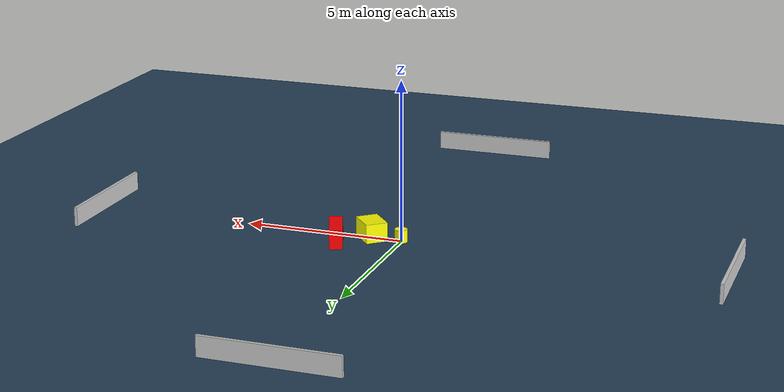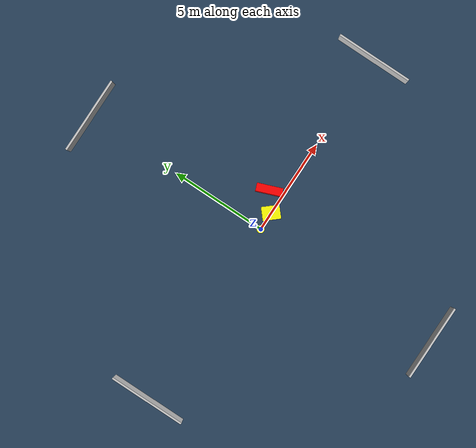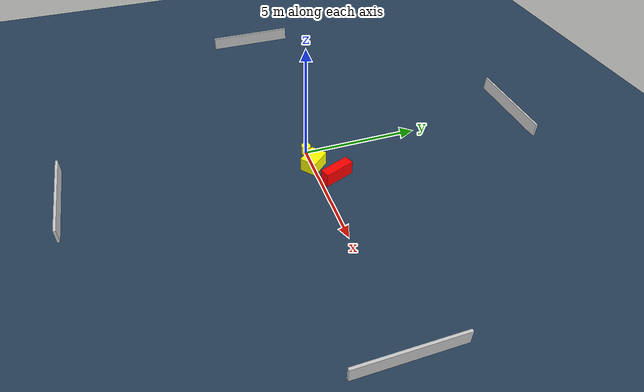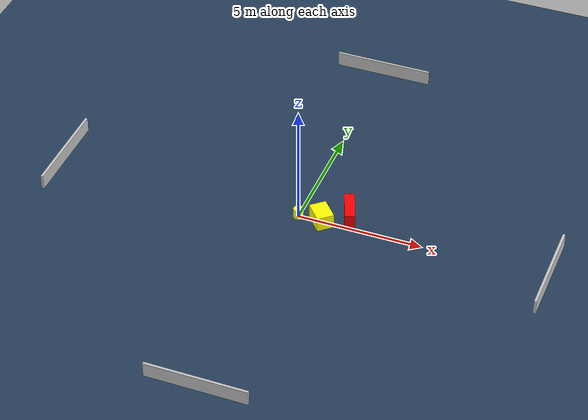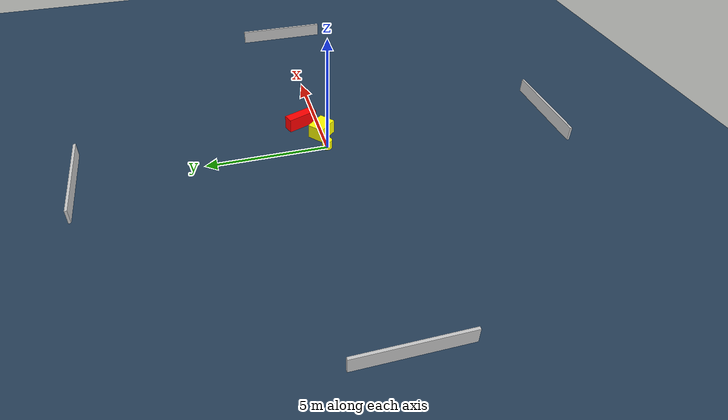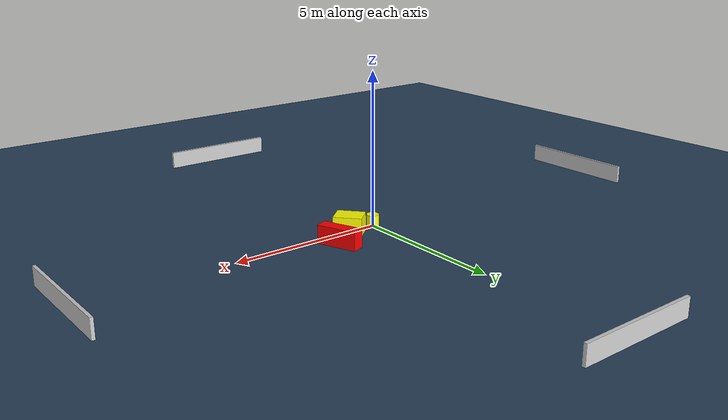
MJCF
<?xml version="1.0" ?>
<mujoco model="generated_environment">
  <option timestep="0.01" integrator="RK4" cone="elliptic"/>
  <default>
    <geom density="1"/>
  </default>
  <asset>
    <texture builtin="gradient" height="3072" name="skybox" rgb1="0.3 0.5 0.7" rgb2="0 0 0" type="skybox" width="512"/>
    <texture builtin="checker" height="300" name="groundplane" rgb1="0.2 0.3 0.4" rgb2="0.1 0.2 0.3" type="2d" width="300"/>
    <material name="groundplane" reflectance="0.2" texrepeat="5 5" texture="groundplane"/>
  </asset>
  <worldbody>
    <light dir="0 0 -1" directional="true" pos="0 0 1.5"/>
    <geom condim="3" friction="0.5 0.005 0.001" material="groundplane" name="floor" pos="0 0 0" size="0 0 0.05" type="plane"/>
    <body name="walls">
      <geom name="wall_1" condim="4" pos="-10.0 0.0 0.3" rgba="0.800000011920929 0.800000011920929 0.800000011920929 1.0" size="0.05 2.0 0.3" type="box"/>
      <geom name="wall_2" condim="4" pos="10.0 0.0 0.3" rgba="0.800000011920929 0.800000011920929 0.800000011920929 1.0" size="0.05 2.0 0.3" type="box"/>
      <geom name="wall_3" condim="4" pos="0.0 -10.0 0.3" rgba="0.800000011920929 0.800000011920929 0.800000011920929 1.0" size="2.0 0.05 0.3" type="box"/>
      <geom name="wall_4" condim="4" pos="0.0 10.0 0.3" rgba="0.800000011920929 0.800000011920929 0.800000011920929 1.0" size="2.0 0.05 0.3" type="box"/>
    </body>
    <body name="robot">
      <joint name="joint_x" type="slide" pos="0 0 0" axis="1 0 0"/>
      <joint name="joint_y" type="slide" pos="0 0 0" axis="0 1 0"/>
      <geom name="robot" type="cylinder" pos="0.0 0.0 0.2" size="0.2 0.2 0.0" mass="5.0" friction="1.0 0.005 0.0001" condim="4" rgba="1.0 1.0 0.0 1.0"/>
    </body>
    <body name="obstacle_1_movable">
      <geom name="obstacle_1_movable" condim="4" pos="0.9433972149455417 0.015806814040607065 0.3" euler="0 0 310.9257669296617" friction="0.0 0.005 0.001" rgba="1.0 1.0 0.0 1.0" size="0.45392733113917894 0.34386021675433076 0.3" type="box" mass="0.1"/>
      <joint type="free"/>
    </body>
    <body name="obstacle_2_static">
      <geom name="obstacle_2_static" condim="4" pos="1.8409007656076988 0.7063468919591384 0.3" euler="0 0 110.87361947657541" friction="0.0 0.005 0.001" rgba="1.0 0.0 0.0 1.0" size="0.6605075051480764 0.20450405332251587 0.3" type="box"/>
    </body>
  </worldbody>
  <actuator>
    <motor name="actuator_x" joint="joint_x" gear="1" ctrlrange="-1 1"/>
    <motor name="actuator_y" joint="joint_y" gear="1" ctrlrange="-1 1"/>
  </actuator>
</mujoco>
